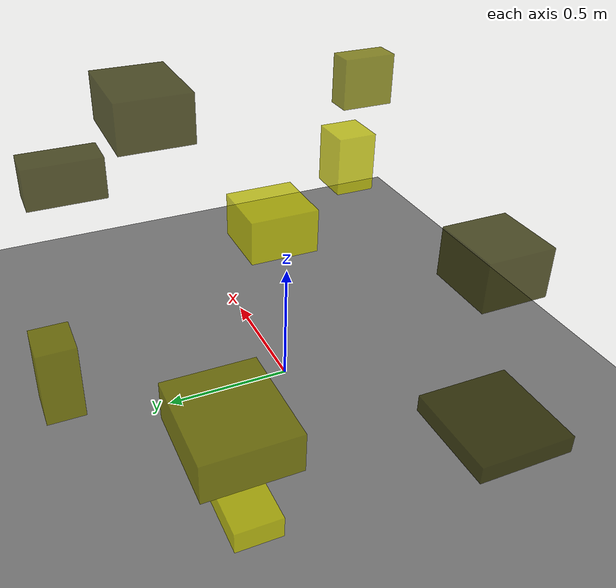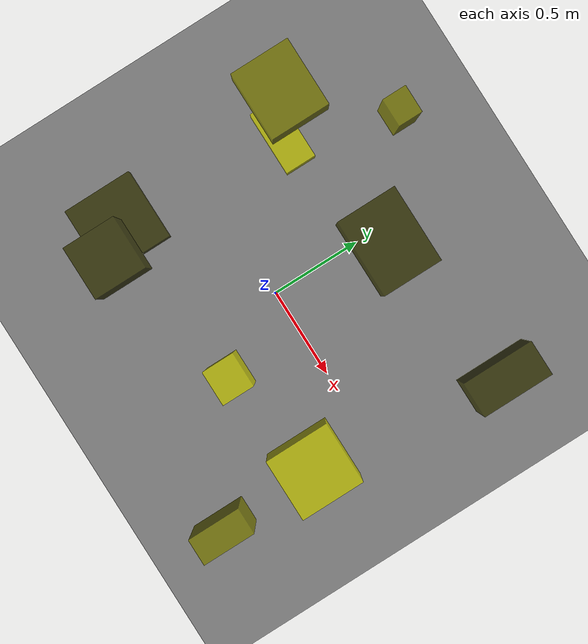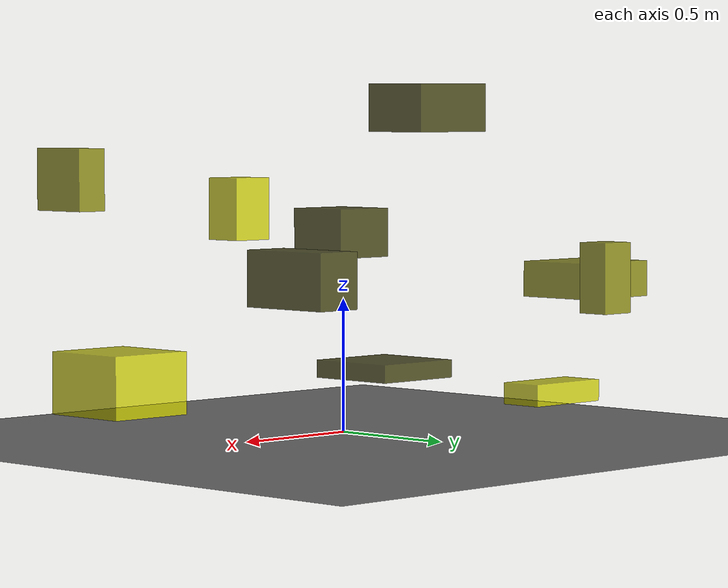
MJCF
<?xml version="1.0"?>
<mujoco model="obstacle_scene">
  <compiler angle="radian" coordinate="local"/>
  <option timestep="0.001" gravity="0 0 -9.81"/>

  <asset>
    <material name="obstacle_mat" rgba="0.8 0.8 0.0 0.8"/>
    <material name="ground_mat" rgba="0.5 0.5 0.5 1"/>
  </asset>

  <worldbody>
    <!-- Ground plane -->
    <geom name="ground" type="plane" size="3 3 0.1" material="ground_mat"/>

    <!-- Obstacles -->
    <body name="obstacle_0" pos="0.074357 0.498876 1.215975">
      <geom name="obs_0" type="box" size="0.168865 0.129381 0.086045" rgba="0.2 0.2 0.0 0.8"/>
    </body>
    <body name="obstacle_1" pos="-0.773887 0.526625 0.565819">
      <geom name="obs_1" type="box" size="0.178521 0.154015 0.067042" rgba="0.5 0.5 0.0 0.8"/>
    </body>
    <body name="obstacle_2" pos="0.844577 -0.304443 0.219379">
      <geom name="obs_2" type="box" size="0.169025 0.175301 0.114085" rgba="0.8 0.8 0.0 0.8"/>
    </body>
    <body name="obstacle_3" pos="-0.527270 -0.537426 0.715287">
      <geom name="obs_3" type="box" size="0.133251 0.130369 0.096337" rgba="0.2 0.2 0.0 0.8"/>
    </body>
    <body name="obstacle_4" pos="0.731208 -0.706240 0.946291">
      <geom name="obs_4" type="box" size="0.060753 0.121238 0.116333" rgba="0.5 0.5 0.0 0.8"/>
    </body>
    <body name="obstacle_5" pos="-0.656582 0.460534 0.137869">
      <geom name="obs_5" type="box" size="0.175910 0.084111 0.040618" rgba="0.8 0.8 0.0 0.8"/>
    </body>
    <body name="obstacle_6" pos="-0.723073 -0.486881 0.162482">
      <geom name="obs_6" type="box" size="0.193684 0.189844 0.035385" rgba="0.2 0.2 0.0 0.8"/>
    </body>
    <body name="obstacle_7" pos="-0.398719 0.938743 0.601239">
      <geom name="obs_7" type="box" size="0.070138 0.060618 0.128013" rgba="0.5 0.5 0.0 0.8"/>
    </body>
    <body name="obstacle_8" pos="0.205832 -0.350297 0.833613">
      <geom name="obs_8" type="box" size="0.082604 0.076458 0.116463" rgba="0.8 0.8 0.0 0.8"/>
    </body>
    <body name="obstacle_9" pos="0.884268 0.681311 0.637774">
      <geom name="obs_9" type="box" size="0.087575 0.178190 0.097631" rgba="0.2 0.2 0.0 0.8"/>
    </body>
  </worldbody>
</mujoco>
